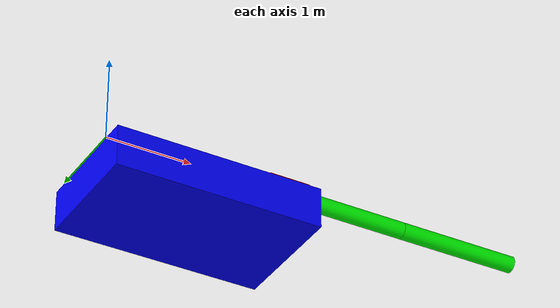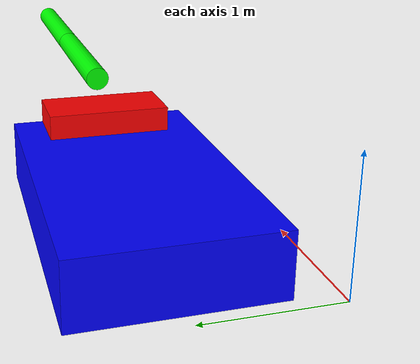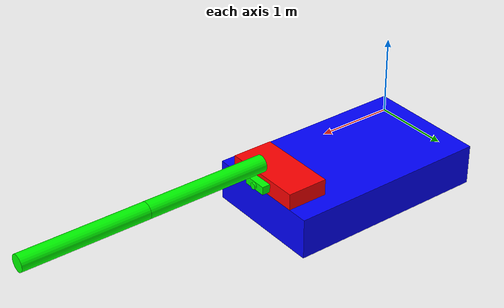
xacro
<?xml version="1.0"?>
<robot xmlns:xacro="http://www.ros.org/wiki/xacro" name="robot" >

    <xacro:include filename="robot_gazebo.xacro" />

    <link name="world"/>

    <joint name = "base_joint" type="fixed">
        <origin xyz="1.5 1 0" rpy="0 0 0"/>
        <parent link="world"/>
        <child link="base_link"/>
    </joint>

    <link name="base_link">
        <visual>
            <origin xyz="0 0 0.15" rpy="0 0 0"/>
            <geometry>
                <box size="2.5 1.5 0.5"/>
            </geometry>
            <material name="blue">
                <color rgba="0 0 1 1 "/>
            </material>
        </visual>
        <collision>
            <origin xyz="0 0 0.15" rpy="0 0 0"/>
            <geometry>
                <box size="2.5 1.5 0.5"/>
            </geometry>
        </collision>
        <inertial>
            <origin xyz="0 0 0.15" rpy="0 0 0"/>
            <mass value="5"/>
            <inertia ixx="2.6" ixy="0" ixz="0" iyy="6.78" iyz="0" izz="8.86"/>
        </inertial>
    </link>

    <joint name="box_joint" type="fixed">
        <origin xyz="1 0 0.5" rpy="0 0 0"/>
        <parent link="base_link"/>
        <child link="box_link"/>
    </joint>

    <link name="box_link">
        <visual>
            <origin xyz="0 0 0" rpy="0 0 0"/>
            <geometry>
                <box size="0.5 1 0.2"/>
            </geometry>
            <material name="red">
                <color rgba="1 0 0 1"/>
            </material>
        </visual>
        <collision>
            <origin xyz="0 0 0" rpy="0 0 0"/>
            <geometry>
                <box size="0.5 1 0.2"/>
            </geometry>
        </collision>
        <inertial>
            <origin xyz="0 0 0" rpy="0 0 0"/>
            <mass value="1"/>
            <inertia ixx="0.087" ixy="0" ixz="0" iyy="0.024" iyz="0" izz="0.104"/>
        </inertial>
    </link>

    <xacro:property name="arm_len" value="1.5" />
    <xacro:property name="arm_rad" value="0.1" />

    <joint name="arm_joint" type="revolute">
        <origin xyz="0.25 0 0.25" rpy="0 0 0"/>
        <parent link="box_link"/>
        <child link="arm_link"/>
        <axis xyz="0 -1 0"/>
        <limit lower="0" upper="1.57" effort="100" velocity="10"/>
    </joint>

    <link name="arm_link">
        <visual>
            <origin xyz="${arm_len/2} 0 0" rpy="0 ${pi/2} 0"/>
            <geometry>
                <cylinder radius="${arm_rad}" length="${arm_len}"/>
            </geometry>
            <material name="green">
                <color rgba="0 1 0 1"/>
            </material>
        </visual>
        <collision>
            <origin xyz="${arm_len/2} 0 0" rpy="0 ${pi/2} 0"/>
            <geometry>
                <cylinder radius="${arm_rad}" length="${arm_len}"/>
            </geometry>
        </collision>
        <inertial>
            <origin xyz="${arm_len/2} 0 0" rpy="0 ${pi/2} 0"/>
            <mass value="1"/>
            <inertia ixx="0.005" ixy="0" ixz="0" iyy="0.005" iyz="0" izz="0.336"/>
        </inertial>
    </link>

    <joint name="l2_joint" type="revolute">
        <parent link="arm_link"/>
        <child link="l2_link"/>
        <origin xyz="1.5 0 0" rpy="0 0 0"/>
        <axis rpy="0 0 0" xyz="0 -1 0"/>
        <limit lower="-1.5" upper="1.5" effort="100" velocity="100"/>
    </joint>

    <link name="l2_link">
        <visual>
            <origin xyz="0.75 0 0" rpy="0 1.57 0"/>
            <geometry>
                <cylinder radius="${arm_rad}" length="${arm_len}"/>
            </geometry>
            <material name="green">
                <color rgba="0 1 0 1"/>
            </material>
        </visual>
        <collision>
            <origin xyz="0.75 0 0" rpy="0 1.57 0"/>
            <geometry>
                <cylinder radius="${arm_rad}" length="${arm_len}"/>
            </geometry>
        </collision>
        <inertial>
            <origin xyz="0.75 0 0" rpy="0 1.57 0"/>
            <mass value="1"/>
            <inertia ixx="0.005" ixy="0" ixz="0" iyy="0.005" iyz="0" izz="0.336"/>
        </inertial>
    </link>

    <joint name="camera_joint" type="fixed">
        <origin xyz="0.3 0 0" rpy="0 0 0"/>
        <parent link="box_link"/>
        <child link="camera_link"/>
    </joint>

    <link name="camera_link">
        <visual>
            <origin xyz="0 0 0" rpy="0 0 0"/>
            <geometry>
                <box size="0.1 0.3 0.1"/>
            </geometry>
            <material name="green">
                <color rgba="0 1 0 1"/>
            </material>
        </visual>
        <visual>
            <origin xyz="0.05 0 0" rpy="0 ${pi/2} 0"/>
            <geometry>
                <cylinder length="0.05" radius="0.04"/>
            </geometry>
            <material name="green">
                <color rgba="0 1 0 1"/>
            </material>
        </visual>
        <collision>
            <origin xyz="0.25 0 0" rpy="0 0 0"/>
            <geometry>
                <box size="0.2 0.3 0.2"/>
            </geometry>
        </collision>
        <inertial>
            <origin xyz="0 0 0" rpy="0 0 0"/>
            <mass value="0.4"/>
            <inertia ixx="0.004" ixy="0" ixz="0" iyy="0.003" iyz="0" izz="0.0043"/>
        </inertial>
    </link>
</robot>
